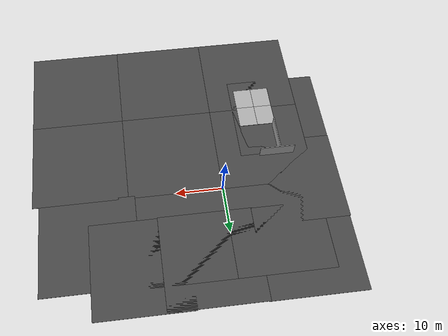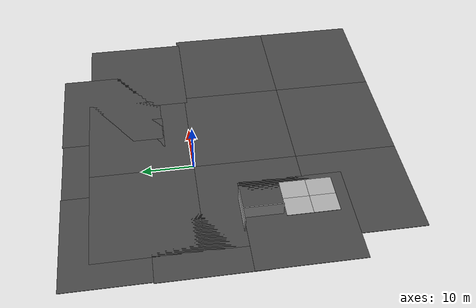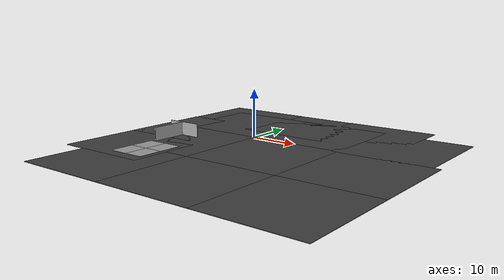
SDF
<sdf version="1.7">
 <world name="default">
  <plugin name="ros_interface_plugin" filename="librotors_gazebo_ros_interface_plugin.so"/>
  <light name="sun" type="directional">
   <pose>0 0 10 0 -0 0</pose>
   <diffuse>0.8 0.8 0.8 1</diffuse>
   <specular>0.2 0.2 0.2 1</specular>
   <attenuation>
    <range>1000</range>
    <constant>0.9</constant>
    <linear>0.01</linear>
    <quadratic>0.001</quadratic>
   </attenuation>
   <direction>-0.5 0.1 -0.9</direction>
   <spot><inner_angle>0</inner_angle><outer_angle>0</outer_angle><falloff>0</falloff></spot>
  </light>
  <physics name="default_physics" default="0" type="ode">
   <ode>
    <solver>
     <type>quick</type>
     <iters>10</iters>
     <sor>1.3</sor>
     <use_dynamic_moi_rescaling>0</use_dynamic_moi_rescaling>
    </solver>
    <constraints>
     <cfm>0</cfm>
     <erp>0.2</erp>
     <contact_max_correcting_vel>100</contact_max_correcting_vel>
     <contact_surface_layer>0.001</contact_surface_layer>
    </constraints>
   </ode>
   <max_step_size>0.01111</max_step_size>
   <real_time_factor>1</real_time_factor>
   <real_time_update_rate>90</real_time_update_rate>
  </physics>
  <scene><ambient>0.4 0.4 0.4 1</ambient><background>0.7 0.7 0.7 1</background><shadows>1</shadows></scene>
  <spherical_coordinates>
   <surface_model>EARTH_WGS84</surface_model>
   <latitude_deg>47.3667</latitude_deg>
   <longitude_deg>8.55</longitude_deg>
   <elevation>500</elevation>
   <heading_deg>0</heading_deg>
  </spherical_coordinates>
  <model name="asphalt_plane">
   <static>1</static>
   <link name="link">
    <collision name="collision"><geometry><box><size>20 20 0.1</size></box></geometry></collision>
    <visual name="visual">
     <cast_shadows>0</cast_shadows>
     <geometry><box><size>20 20 0.1</size></box></geometry>
     <material>
      <script>
       <uri>model://asphalt_plane/materials/scripts</uri>
       <uri>model://asphalt_plane/materials/textures</uri>
       <name>vrc/asphalt</name>
      </script>
     </material>
    </visual>
    <velocity_decay><linear>0</linear><angular>0</angular></velocity_decay>
   </link>
   <pose>10 10 0 0 -0 0</pose>
  </model>
  <model name="asphalt_plane_0">
   <static>1</static>
   <link name="link">
    <collision name="collision"><geometry><box><size>20 20 0.1</size></box></geometry></collision>
    <visual name="visual">
     <cast_shadows>0</cast_shadows>
     <geometry><box><size>20 20 0.1</size></box></geometry>
     <material>
      <script>
       <uri>model://asphalt_plane/materials/scripts</uri>
       <uri>model://asphalt_plane/materials/textures</uri>
       <name>vrc/asphalt</name>
      </script>
     </material>
    </visual>
    <velocity_decay><linear>0</linear><angular>0</angular></velocity_decay>
   </link>
   <pose>10 -10 0 0 -0 0</pose>
  </model>
  <model name="asphalt_plane_1">
   <static>1</static>
   <link name="link">
    <collision name="collision"><geometry><box><size>20 20 0.1</size></box></geometry></collision>
    <visual name="visual">
     <cast_shadows>0</cast_shadows>
     <geometry><box><size>20 20 0.1</size></box></geometry>
     <material>
      <script>
       <uri>model://asphalt_plane/materials/scripts</uri>
       <uri>model://asphalt_plane/materials/textures</uri>
       <name>vrc/asphalt</name>
      </script>
     </material>
    </visual>
    <velocity_decay><linear>0</linear><angular>0</angular></velocity_decay>
   </link>
   <pose>-10 10 0 0 -0 0</pose>
  </model>
  <model name="asphalt_plane_2">
   <static>1</static>
   <link name="link">
    <collision name="collision"><geometry><box><size>20 20 0.1</size></box></geometry></collision>
    <visual name="visual">
     <cast_shadows>0</cast_shadows>
     <geometry><box><size>20 20 0.1</size></box></geometry>
     <material>
      <script>
       <uri>model://asphalt_plane/materials/scripts</uri>
       <uri>model://asphalt_plane/materials/textures</uri>
       <name>vrc/asphalt</name>
      </script>
     </material>
    </visual>
    <velocity_decay><linear>0</linear><angular>0</angular></velocity_decay>
   </link>
   <pose>-10 -10 0 0 -0 0</pose>
  </model>
  <model name="asphalt_plane_3">
   <static>1</static>
   <link name="link">
    <collision name="collision"><geometry><box><size>20 20 0.1</size></box></geometry></collision>
    <visual name="visual">
     <cast_shadows>0</cast_shadows>
     <geometry><box><size>20 20 0.1</size></box></geometry>
     <material>
      <script>
       <uri>model://asphalt_plane/materials/scripts</uri>
       <uri>model://asphalt_plane/materials/textures</uri>
       <name>vrc/asphalt</name>
      </script>
     </material>
    </visual>
    <velocity_decay><linear>0</linear><angular>0</angular></velocity_decay>
   </link>
   <pose>-10 -30 0 0 -0 0</pose>
  </model>
  <model name="asphalt_plane_4">
   <static>1</static>
   <link name="link">
    <collision name="collision"><geometry><box><size>20 20 0.1</size></box></geometry></collision>
    <visual name="visual">
     <cast_shadows>0</cast_shadows>
     <geometry><box><size>20 20 0.1</size></box></geometry>
     <material>
      <script>
       <uri>model://asphalt_plane/materials/scripts</uri>
       <uri>model://asphalt_plane/materials/textures</uri>
       <name>vrc/asphalt</name>
      </script>
     </material>
    </visual>
    <velocity_decay><linear>0</linear><angular>0</angular></velocity_decay>
   </link>
   <pose>10 -30 0 0 -0 0</pose>
  </model>
  <model name="asphalt_plane_5">
   <static>1</static>
   <link name="link">
    <collision name="collision"><geometry><box><size>20 20 0.1</size></box></geometry></collision>
    <visual name="visual">
     <cast_shadows>0</cast_shadows>
     <geometry><box><size>20 20 0.1</size></box></geometry>
     <material>
      <script>
       <uri>model://asphalt_plane/materials/scripts</uri>
       <uri>model://asphalt_plane/materials/textures</uri>
       <name>vrc/asphalt</name>
      </script>
     </material>
    </visual>
    <velocity_decay><linear>0</linear><angular>0</angular></velocity_decay>
   </link>
   <pose>30 -30 0 0 -0 0</pose>
  </model>
  <model name="asphalt_plane_6">
   <static>1</static>
   <link name="link">
    <collision name="collision"><geometry><box><size>20 20 0.1</size></box></geometry></collision>
    <visual name="visual">
     <cast_shadows>0</cast_shadows>
     <geometry><box><size>20 20 0.1</size></box></geometry>
     <material>
      <script>
       <uri>model://asphalt_plane/materials/scripts</uri>
       <uri>model://asphalt_plane/materials/textures</uri>
       <name>vrc/asphalt</name>
      </script>
     </material>
    </visual>
    <velocity_decay><linear>0</linear><angular>0</angular></velocity_decay>
   </link>
   <pose>28.6679 9.53271 0 0 -0 0</pose>
  </model>
  <model name="asphalt_plane_7">
   <static>1</static>
   <link name="link">
    <collision name="collision"><geometry><box><size>20 20 0.1</size></box></geometry></collision>
    <visual name="visual">
     <cast_shadows>0</cast_shadows>
     <geometry><box><size>20 20 0.1</size></box></geometry>
     <material>
      <script>
       <uri>model://asphalt_plane/materials/scripts</uri>
       <uri>model://asphalt_plane/materials/textures</uri>
       <name>vrc/asphalt</name>
      </script>
     </material>
    </visual>
    <velocity_decay><linear>0</linear><angular>0</angular></velocity_decay>
   </link>
   <pose>30 -10 0 0 -0 0</pose>
  </model>
  <model name="mud_box">
   <static>1</static>
   <link name="link">
    <collision name="collision"><geometry><box><size>8 10 0.2</size></box></geometry></collision>
    <visual name="visual_1">
     <pose>-2 2.5 0 0 -0 0</pose>
     <cast_shadows>0</cast_shadows>
     <geometry><box><size>4 5 0.2</size></box></geometry>
     <material>
      <script>
       <uri>model://mud_box/materials/scripts</uri>
       <uri>model://mud_box/materials/textures</uri>
       <name>vrc/mud</name>
      </script>
     </material>
    </visual>
    <visual name="visual_2">
     <pose>2 2.5 0 0 -0 0</pose>
     <cast_shadows>0</cast_shadows>
     <geometry><box><size>4 5 0.2</size></box></geometry>
     <material>
      <script>
       <uri>model://mud_box/materials/scripts</uri>
       <uri>model://mud_box/materials/textures</uri>
       <name>vrc/mud</name>
      </script>
     </material>
    </visual>
    <visual name="visual_3">
     <pose>2 -2.5 0 0 -0 0</pose>
     <cast_shadows>0</cast_shadows>
     <geometry><box><size>4 5 0.2</size></box></geometry>
     <material>
      <script>
       <uri>model://mud_box/materials/scripts</uri>
       <uri>model://mud_box/materials/textures</uri>
       <name>vrc/mud</name>
      </script>
     </material>
    </visual>
    <visual name="visual_4">
     <pose>-2 -2.5 0 0 -0 0</pose>
     <cast_shadows>0</cast_shadows>
     <geometry><box><size>4 5 0.2</size></box></geometry>
     <material>
      <script>
       <uri>model://mud_box/materials/scripts</uri>
       <uri>model://mud_box/materials/textures</uri>
       <name>vrc/mud</name>
      </script>
     </material>
    </visual>
    <velocity_decay><linear>0</linear><angular>0</angular></velocity_decay>
   </link>
   <pose>-10.3155 -20.3684 0 0 -0 0</pose>
  </model>
  <model name="grey_wall">
   <static>1</static>
   <link name="link">
    <pose>0 0 1.4 0 -0 0</pose>
    <collision name="collision"><geometry><box><size>7.5 0.2 2.8</size></box></geometry></collision>
    <visual name="visual">
     <cast_shadows>0</cast_shadows>
     <geometry><box><size>7.5 0.2 2.8</size></box></geometry>
     <material>
      <script>
       <uri>model://grey_wall/materials/scripts</uri>
       <uri>model://grey_wall/materials/textures</uri>
       <name>vrc/grey_wall</name>
      </script>
     </material>
    </visual>
    <velocity_decay><linear>0</linear><angular>0</angular></velocity_decay>
   </link>
   <pose>-12.9951 -7.32269 0 0 -0 0</pose>
  </model>
  <model name="grey_wall_0">
   <static>1</static>
   <link name="link">
    <pose>0 0 1.4 0 -0 0</pose>
    <collision name="collision"><geometry><box><size>7.5 0.2 2.8</size></box></geometry></collision>
    <visual name="visual">
     <cast_shadows>0</cast_shadows>
     <geometry><box><size>7.5 0.2 2.8</size></box></geometry>
     <material>
      <script>
       <uri>model://grey_wall/materials/scripts</uri>
       <uri>model://grey_wall/materials/textures</uri>
       <name>vrc/grey_wall</name>
      </script>
     </material>
    </visual>
    <velocity_decay><linear>0</linear><angular>0</angular></velocity_decay>
   </link>
   <pose>-13.6185 -11.1422 0 0 0 -1.57378</pose>
  </model>
  <gravity>0 0 -9.8066</gravity>
  <magnetic_field>6e-06 2.3e-05 -4.2e-05</magnetic_field>
  <atmosphere type="adiabatic"/>
  <model name="asphalt_plane_3_clone">
   <static>1</static>
   <link name="link">
    <collision name="collision"><geometry><box><size>20 20 0.1</size></box></geometry></collision>
    <visual name="visual">
     <cast_shadows>0</cast_shadows>
     <geometry><box><size>20 20 0.1</size></box></geometry>
     <material>
      <script>
       <uri>model://asphalt_plane/materials/scripts</uri>
       <uri>model://asphalt_plane/materials/textures</uri>
       <name>vrc/asphalt</name>
      </script>
     </material>
    </visual>
    <velocity_decay><linear>0</linear><angular>0</angular></velocity_decay>
   </link>
   <pose>-15.0466 15.2042 0 0 -0 0</pose>
  </model>
  <model name="asphalt_plane_3_clone_0">
   <static>1</static>
   <link name="link">
    <collision name="collision"><geometry><box><size>20 20 0.1</size></box></geometry></collision>
    <visual name="visual">
     <cast_shadows>0</cast_shadows>
     <geometry><box><size>20 20 0.1</size></box></geometry>
     <material>
      <script>
       <uri>model://asphalt_plane/materials/scripts</uri>
       <uri>model://asphalt_plane/materials/textures</uri>
       <name>vrc/asphalt</name>
      </script>
     </material>
    </visual>
    <velocity_decay><linear>0</linear><angular>0</angular></velocity_decay>
   </link>
   <pose>-15.2587 -0.69917 0 0 -0 0</pose>
  </model>
  <model name="asphalt_plane_3_clone_1">
   <static>1</static>
   <link name="link">
    <collision name="collision"><geometry><box><size>20 20 0.1</size></box></geometry></collision>
    <visual name="visual">
     <cast_shadows>0</cast_shadows>
     <geometry><box><size>20 20 0.1</size></box></geometry>
     <material>
      <script>
       <uri>model://asphalt_plane/materials/scripts</uri>
       <uri>model://asphalt_plane/materials/textures</uri>
       <name>vrc/asphalt</name>
      </script>
     </material>
    </visual>
    <velocity_decay><linear>0</linear><angular>0</angular></velocity_decay>
   </link>
   <pose>-15.2064 -17.6481 0 0 -0 0</pose>
  </model>
  <model name="asphalt_plane_3_clone_2">
   <static>1</static>
   <link name="link">
    <collision name="collision"><geometry><box><size>20 20 0.1</size></box></geometry></collision>
    <visual name="visual">
     <cast_shadows>0</cast_shadows>
     <geometry><box><size>20 20 0.1</size></box></geometry>
     <material>
      <script>
       <uri>model://asphalt_plane/materials/scripts</uri>
       <uri>model://asphalt_plane/materials/textures</uri>
       <name>vrc/asphalt</name>
      </script>
     </material>
    </visual>
    <velocity_decay><linear>0</linear><angular>0</angular></velocity_decay>
   </link>
   <pose>4.47705 15.1098 0 0 -0 0</pose>
  </model>
  <model name="asphalt_plane_3_clone_3">
   <static>1</static>
   <link name="link">
    <collision name="collision"><geometry><box><size>20 20 0.1</size></box></geometry></collision>
    <visual name="visual">
     <cast_shadows>0</cast_shadows>
     <geometry><box><size>20 20 0.1</size></box></geometry>
     <material>
      <script>
       <uri>model://asphalt_plane/materials/scripts</uri>
       <uri>model://asphalt_plane/materials/textures</uri>
       <name>vrc/asphalt</name>
      </script>
     </material>
    </visual>
    <velocity_decay><linear>0</linear><angular>0</angular></velocity_decay>
   </link>
   <pose>18.6124 15.2938 0 0 -0 0</pose>
  </model>
 </world>
</sdf>
